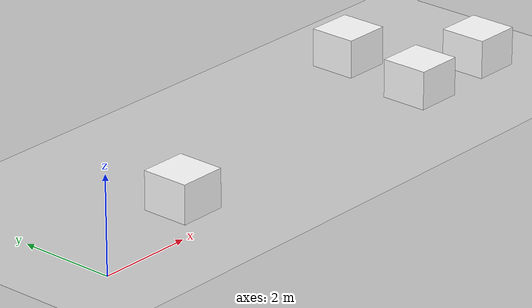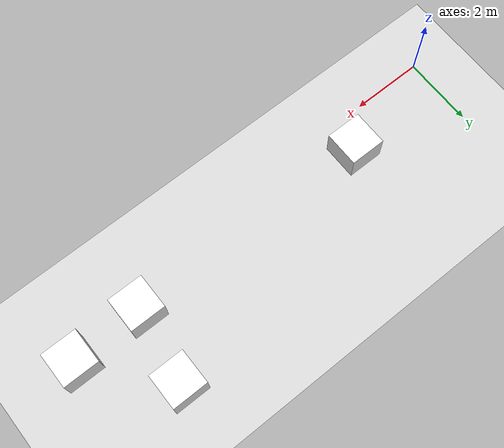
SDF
<sdf version="1.6">
 <world name="default">
  <light name="sun" type="directional">
   <cast_shadows>0</cast_shadows>
   <pose>0 0 10 0 -0 0</pose>
   <diffuse>0.8 0.8 0.8 1</diffuse>
   <specular>0.2 0.2 0.2 1</specular>
   <attenuation>
    <range>1000</range>
    <constant>0.9</constant>
    <linear>0.01</linear>
    <quadratic>0.001</quadratic>
   </attenuation>
   <direction>-0.5 0.1 -0.9</direction>
  </light>
  <model name="ground_plane">
   <static>1</static>
   <link name="link">
    <collision name="collision">
     <geometry><plane><normal>0 0 1</normal><size>100 100</size></plane></geometry>
     <surface>
      <contact><collide_bitmask>65535</collide_bitmask></contact>
      <friction><ode><mu>100</mu><mu2>50</mu2></ode></friction>
     </surface>
    </collision>
    <visual name="visual">
     <cast_shadows>0</cast_shadows>
     <geometry><plane><normal>0 0 1</normal><size>100 100</size></plane></geometry>
     <material>
      <script><uri>file://media/materials/scripts/gazebo.material</uri><name>Gazebo/Grey</name></script>
     </material>
    </visual>
   </link>
  </model>
  <gravity>0 0 -9.8</gravity>
  <magnetic_field>6e-06 2.3e-05 -4.2e-05</magnetic_field>
  <atmosphere type="adiabatic"/>
  <physics name="default_physics" default="0" type="ode">
   <max_step_size>0.001</max_step_size>
   <real_time_factor>1</real_time_factor>
   <real_time_update_rate>1000</real_time_update_rate>
  </physics>
  <scene><ambient>0.4 0.4 0.4 1</ambient><background>0.7 0.7 0.7 1</background><shadows>0</shadows></scene>
  <audio><device>default</device></audio>
  <spherical_coordinates>
   <surface_model>EARTH_WGS84</surface_model>
   <latitude_deg>0</latitude_deg>
   <longitude_deg>0</longitude_deg>
   <elevation>0</elevation>
   <heading_deg>0</heading_deg>
  </spherical_coordinates>
  <include>
   <uri>model://aruco_visual_marker_1</uri>
   <name>aruco_visual_marker_1</name>
   <pose>3 0.9 0.3 1.57 -1.57 -1.57</pose>
  </include>
  <include>
   <uri>model://aruco_visual_marker_2</uri>
   <name>aruco_visual_marker_2</name>
   <pose>10 0.9 0.3 1.57 -1.57 -1.57</pose>
  </include>
  <include>
   <uri>model://aruco_visual_marker_3</uri>
   <name>aruco_visual_marker_3</name>
   <pose>12 1 0.3 1.57 -1.57 -1.57</pose>
  </include>
  <include>
   <uri>model://aruco_visual_marker_4</uri>
   <name>aruco_visual_marker_4</name>
   <pose>10.3 3 0.3 3.14 -1.57 -1.57</pose>
  </include>
 </world>
</sdf>

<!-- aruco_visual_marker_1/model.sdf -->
<sdf version='1.5'>
  <model name='aruco_visual_marker_1'>

    <link name='marker'>
      <pose frame=''>0 0 0 0 0 0</pose>
      <visual name='visual'>
        <geometry>
          <box>
            <size>1 1 1</size>
          </box>
        </geometry>
        <material>
          <script>
            <uri>model://aruco_visual_marker_1/materials/scripts</uri>
            <uri>model://aruco_visual_marker_1/materials/textures</uri>
            <name>ArucoVisualMarker1/Marker</name>
          </script>
          <ambient>1 1 1 1</ambient>
          <diffuse>1 1 1 1</diffuse>
          <specular>0 0 0 1</specular>
          <emissive>1 1 1 0</emissive>
          <shader type='vertex'>
            <normal_map>__default__</normal_map>
          </shader>
        </material>
        <pose frame=''>0 0 0 0 -0 0</pose>
        <cast_shadows>1</cast_shadows>
        <transparency>0</transparency>
      </visual>
      <collision name='collision'>
        <laser_retro>0</laser_retro>
        <max_contacts>10</max_contacts>
        <pose frame=''>0 0 0 0 -0 0</pose>
        <geometry>
          <box>
            <size>1 1 1</size>
          </box>
        </geometry>
      </collision>
    </link>

    <static>1</static>
    <allow_auto_disable>1</allow_auto_disable>

  </model>
</sdf>

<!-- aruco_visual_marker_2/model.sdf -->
<sdf version='1.5'>
  <model name='aruco_visual_marker_2'>

    <link name='marker'>
      <pose frame=''>0 0 0 0 0 0</pose>
      <visual name='visual'>
        <geometry>
          <box>
            <size>1 1 1</size>
          </box>
        </geometry>
        <material>
          <script>
            <uri>model://aruco_visual_marker_2/materials/scripts</uri>
            <uri>model://aruco_visual_marker_2/materials/textures</uri>
            <name>ArucoVisualMarker2/Marker</name>
          </script>
          <ambient>1 1 1 1</ambient>
          <diffuse>1 1 1 1</diffuse>
          <specular>0 0 0 1</specular>
          <emissive>1 1 1 0</emissive>
          <shader type='vertex'>
            <normal_map>__default__</normal_map>
          </shader>
        </material>
        <pose frame=''>0 0 0 0 -0 0</pose>
        <cast_shadows>1</cast_shadows>
        <transparency>0</transparency>
      </visual>
      <collision name='collision'>
        <laser_retro>0</laser_retro>
        <max_contacts>10</max_contacts>
        <pose frame=''>0 0 0 0 -0 0</pose>
        <geometry>
          <box>
            <size>1 1 1</size>
          </box>
        </geometry>
      </collision>
    </link>

    <static>1</static>
    <allow_auto_disable>1</allow_auto_disable>

  </model>
</sdf>

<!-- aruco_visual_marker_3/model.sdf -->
<sdf version='1.5'>
  <model name='aruco_visual_marker_3'>

    <link name='marker'>
      <pose frame=''>0 0 0 0 0 0</pose>
      <visual name='visual'>
        <geometry>
          <box>
            <size>1 1 1</size>
          </box>
        </geometry>
        <material>
          <script>
            <uri>model://aruco_visual_marker_3/materials/scripts</uri>
            <uri>model://aruco_visual_marker_3/materials/textures</uri>
            <name>ArucoVisualMarker3/Marker</name>
          </script>
          <ambient>1 1 1 1</ambient>
          <diffuse>1 1 1 1</diffuse>
          <specular>0 0 0 1</specular>
          <emissive>1 1 1 0</emissive>
          <shader type='vertex'>
            <normal_map>__default__</normal_map>
          </shader>
        </material>
        <pose frame=''>0 0 0 0 -0 0</pose>
        <cast_shadows>1</cast_shadows>
        <transparency>0</transparency>
      </visual>
      <collision name='collision'>
        <laser_retro>0</laser_retro>
        <max_contacts>10</max_contacts>
        <pose frame=''>0 0 0 0 -0 0</pose>
        <geometry>
          <box>
            <size>1 1 1</size>
          </box>
        </geometry>
      </collision>
    </link>

    <static>1</static>
    <allow_auto_disable>1</allow_auto_disable>

  </model>
</sdf>

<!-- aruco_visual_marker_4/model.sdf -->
<sdf version='1.5'>
  <model name='aruco_visual_marker_4'>

    <link name='marker'>
      <pose frame=''>0 0 0 0 0 0</pose>
      <visual name='visual'>
        <geometry>
          <box>
            <size>1 1 1</size>
          </box>
        </geometry>
        <material>
          <script>
            <uri>model://aruco_visual_marker_4/materials/scripts</uri>
            <uri>model://aruco_visual_marker_4/materials/textures</uri>
            <name>ArucoVisualMarker4/Marker</name>
          </script>
          <ambient>1 1 1 1</ambient>
          <diffuse>1 1 1 1</diffuse>
          <specular>0 0 0 1</specular>
          <emissive>1 1 1 0</emissive>
          <shader type='vertex'>
            <normal_map>__default__</normal_map>
          </shader>
        </material>
        <pose frame=''>0 0 0 0 -0 0</pose>
        <cast_shadows>1</cast_shadows>
        <transparency>0</transparency>
      </visual>
      <collision name='collision'>
        <laser_retro>0</laser_retro>
        <max_contacts>10</max_contacts>
        <pose frame=''>0 0 0 0 -0 0</pose>
        <geometry>
          <box>
            <size>1 1 1</size>
          </box>
        </geometry>
      </collision>
    </link>

    <static>1</static>
    <allow_auto_disable>1</allow_auto_disable>

  </model>
</sdf>
